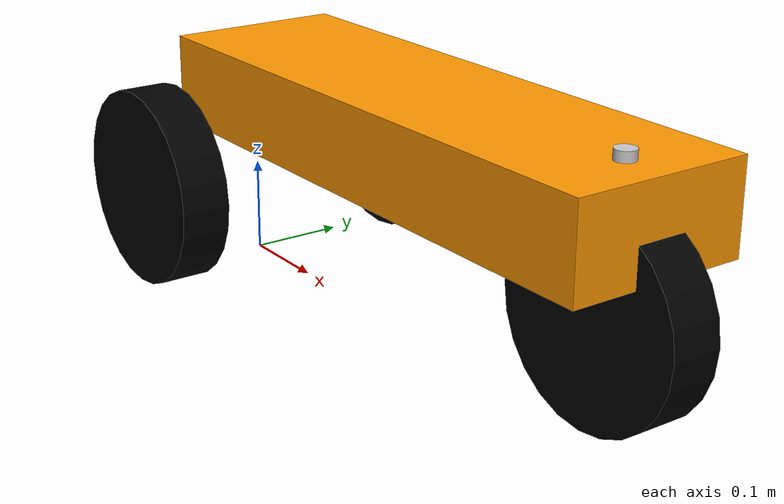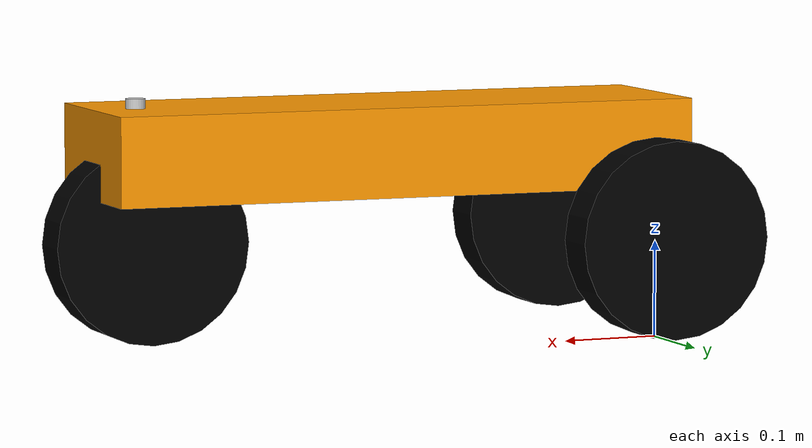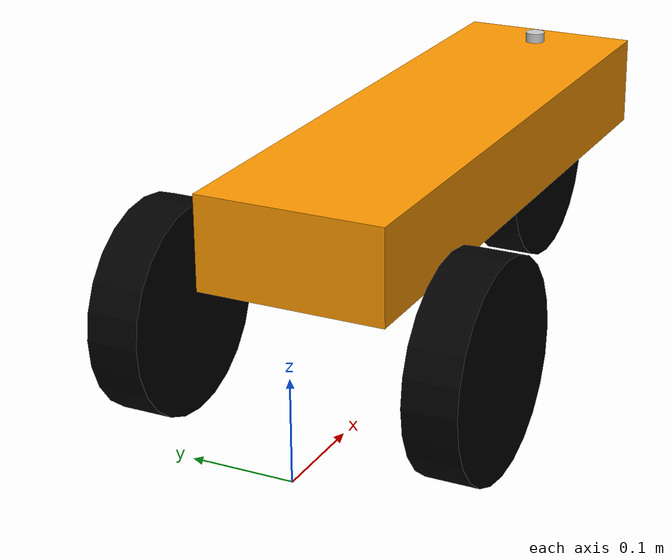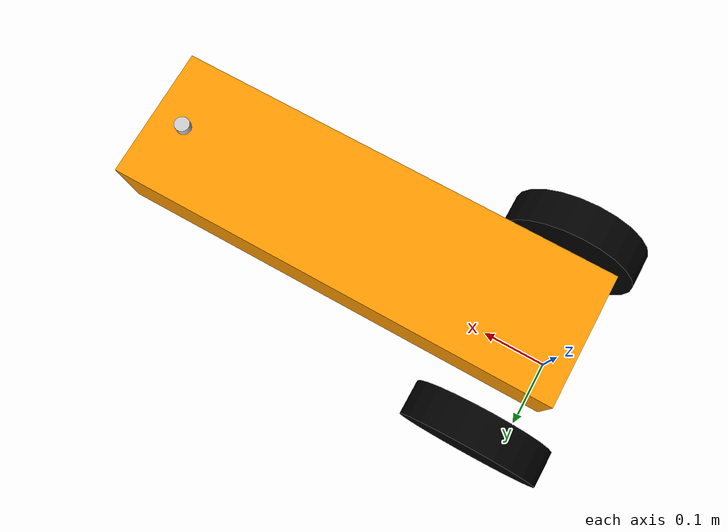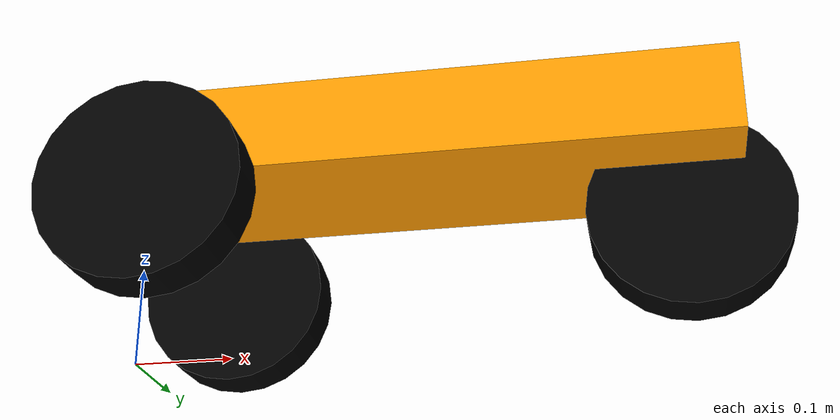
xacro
<?xml version="1.0"?>
<robot name="Segwayrmp" xmlns:xacro="http://ros.org/wiki/xacro">
  <material name="Black">
    <color rgba="0 0 0 1" />
  </material>
  <material name="Grey">
    <color rgba="0.8 0.8 0.8 1" />
  </material>
  <material name="Orange">
    <color rgba="1 0.6 0 1" />
  </material>
  <material name="White">
    <color rgba="1 1 1 1" />
  </material>

  <xacro:property name="wheel_length" value="0.05" />
  <xacro:property name="wheel_radius" value="0.1" />

  <link name="base_link" />

  <!-- base_footprint -->
  <link name="base_footprint">
    <collision>
      <origin xyz="0 0 0" rpy="0 0 0" />
      <geometry>
        <box size="0.61 0.18 0.09" />
      </geometry>
    </collision>

    <visual>
      <origin xyz="0 0 0" rpy="0 0 0" />
      <geometry>
        <box size="0.61 0.18 0.09" />
      </geometry>
      <material name="Orange" />
    </visual>

    <inertial>
      <origin xyz="-0.05 0 0" rpy="0 0 0" />
      <mass value="16" />
      <inertia ixx="0.06192" ixy="0" ixz="0" iyy="0.28416" iyz="0" izz="0.318336" />
    </inertial>
  </link>

  <joint name="base_footprint_joint" type="fixed">
    <origin xyz="0.305 0 0.21" rpy="0 0 0" />
    <parent link="base_link" />
    <child link="base_footprint" />
  </joint>

  <!-- Left Rear Wheel Link -->
  <link name="left_rear_wheel">
    <collision>
      <geometry>
        <cylinder length="${wheel_length}" radius="${wheel_radius}" />
      </geometry>
    </collision>
    <visual>
      <geometry>
        <cylinder length="${wheel_length}" radius="${wheel_radius}" />
      </geometry>
      <material name="Black" />
    </visual>

    <inertial>
      <mass value="1.2" />
      <inertia ixx="0.00145833" ixy="0.0" ixz="0.0" iyy="0.00145833" iyz="0.0" izz="0.00125" />
    </inertial>
  </link>

  <joint name="left_rear_wheel_joint" type="continuous">
    <origin xyz="-0.25 0.15 -0.09" rpy="-1.57 0 0" />
    <parent link="base_footprint" />
    <child link="left_rear_wheel" />
    <axis xyz="0 0 1" />
    <dynamics damping="0.2" />
  </joint>

  <!-- Right Rear Wheel Link -->
  <link name="right_rear_wheel">
    <collision>
      <geometry>
        <cylinder length="${wheel_length}" radius="${wheel_radius}" />
      </geometry>
    </collision>
    <visual>
      <geometry>
        <cylinder length="${wheel_length}" radius="${wheel_radius}" />
      </geometry>
      <material name="Black" />
    </visual>

    <inertial>
      <mass value="1.2" />
      <inertia ixx="0.00145833" ixy="0.0" ixz="0.0" iyy="0.00145833" iyz="0.0" izz="0.00125" />
    </inertial>
  </link>

  <joint name="right_rear_wheel_joint" type="continuous">
    <origin xyz="-0.25 -0.15 -0.09" rpy="-1.57 0 0" />
    <parent link="base_footprint" />
    <child link="right_rear_wheel" />
    <axis xyz="0 0 1" />
    <dynamics damping="0.2" />
  </joint>

  <!-- Steering Link -->
  <link name="steering_link">
    <visual>
      <geometry>
        <box size="0.01 0.01 0.01" />
      </geometry>
      <material name="Black" />
    </visual>
    <inertial>
      <origin xyz="0 0 0" rpy="0 0 0" />
      <mass value="0.05" />
      <inertia ixx="0.001" ixy="0.0" ixz="0.0" iyy="0.001" iyz="0.0" izz="0.001" />
    </inertial>
  </link>

  <joint name="steering_joint" type="continuous">
    <origin xyz="0.25 0 -0.09" rpy="0 0 0" />
    <parent link="base_footprint" />
    <child link="steering_link" />
    <axis xyz="0 0 1" />
    <dynamics damping="0.2" />
  </joint>

  <!-- Traction Wheel Link -->
  <link name="front_wheel_link">
    <collision>
      <geometry>
        <cylinder length="${wheel_length}" radius="${wheel_radius}" />
      </geometry>
    </collision>
    <visual>
      <geometry>
        <cylinder length="${wheel_length}" radius="${wheel_radius}" />
      </geometry>
      <material name="Black" />
    </visual>
    <inertial>
      <origin xyz="0 0 0" rpy="0 0 0" />
      <mass value="1.2" />
      <inertia ixx="0.0145833" ixy="0.0" ixz="0.0" iyy="0.0145833" iyz="0.0" izz="0.0125" />
    </inertial>
  </link>

  <joint name="traction_joint" type="continuous">
    <parent link="steering_link" />
    <child link="front_wheel_link" />
    <origin xyz="0 0 0" rpy="-1.57 1.57 0" />
    <axis xyz="0 0 1" />
    <dynamics damping="0.2" />
  </joint>

  <!-- Sensors -->
  <link name="laser_link">
    <collision>
      <origin xyz="0 0 0" rpy="0 0 0" />
      <geometry>
        <cylinder length="0.01" radius="0.01" />
      </geometry>
    </collision>
    <visual>
      <geometry>
        <cylinder length="0.01" radius="0.01" />
      </geometry>
      <material name="Grey" />
    </visual>
    <inertial>
      <origin xyz="0 0 0" rpy="0 0 0" />
      <mass value="0.1" />
      <inertia ixx="0.00001" ixy="0.0" ixz="0.0" iyy="0.00001" iyz="0.0" izz="0.00001" />
    </inertial>
  </link>
  <joint name="laser_joint" type="fixed">
    <origin xyz="0.565 0 0.26" rpy="0 0 0" />
    <parent link="base_link" />
    <child link="laser_link" />
  </joint>

  <gazebo reference="laser_link">
    <sensor name="laser" type="ray">
      <always_on>true</always_on>
      <visualize>true</visualize>
      <update_rate>20</update_rate>
      <ray>
        <scan>
          <horizontal>
            <samples>240</samples>
            <resolution>1.000000</resolution>
            <min_angle>-2.35619</min_angle>
            <max_angle>2.35619</max_angle>
          </horizontal>
        </scan>
        <range>
          <min>0.3</min>
          <max>30.0</max>
          <resolution>0.015</resolution>
        </range>
        <noise>
          <type>gaussian</type>
          <mean>0.0</mean>
          <stddev>0.01</stddev>
        </noise>
      </ray>
      <plugin name="scan" filename="libgazebo_ros_ray_sensor.so">
        <ros>
          <remapping>~/out:=scan</remapping>
        </ros>
        <output_type>sensor_msgs/LaserScan</output_type>
        <frame_name>laser_link</frame_name>
      </plugin>
    </sensor>
  </gazebo>

  <!-- Gazebo Controls -->
  <ros2_control name="GazeboSystem" type="system">
    <hardware>
      <plugin>gazebo_ros2_control/GazeboSystem</plugin>
    </hardware>
    <joint name="steering_joint">
      <command_interface name="position" />
      <state_interface name="position" />
    </joint>
    <joint name="traction_joint">
      <command_interface name="velocity" />
      <state_interface name="velocity" />
      <state_interface name="position" />
    </joint>
  </ros2_control>

  <gazebo>
    <plugin filename="libgazebo_ros2_control.so" name="tricycle_control">
      <parameters>$(find segwayrmp_description)/config/tricycle_drive_controller.yaml</parameters>
    </plugin>
  </gazebo>

</robot>
